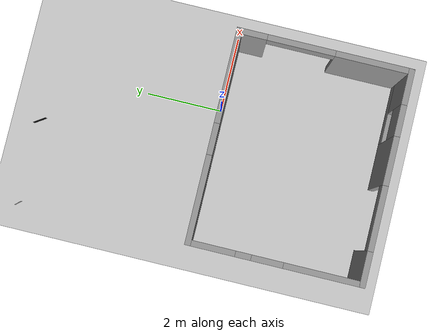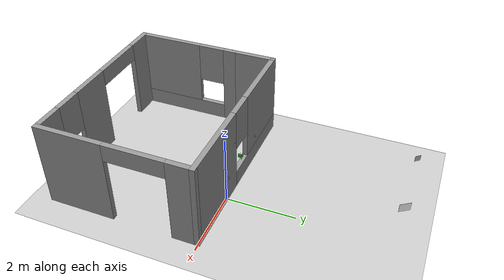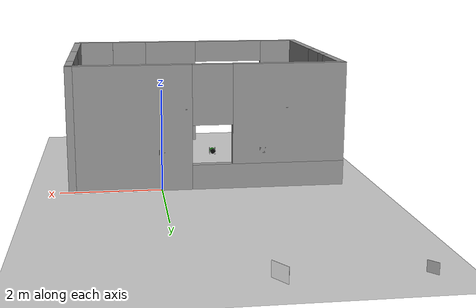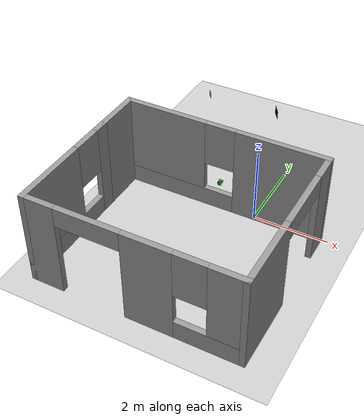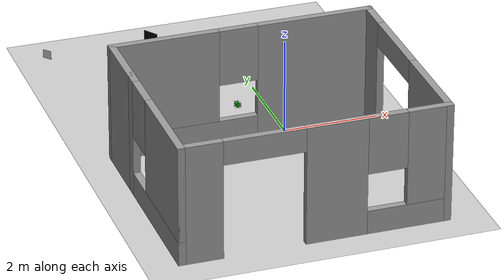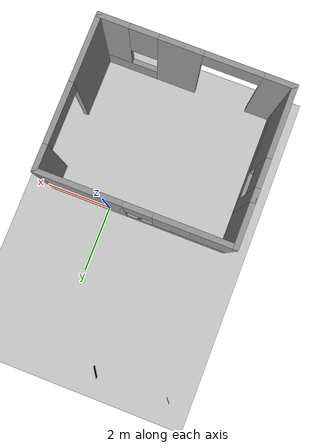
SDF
<sdf version="1.4">
 <world name="default">
  <include><uri>model://sun</uri></include>
  <include><uri>model://ground_plane</uri></include>
  <physics type="ode">
   <real_time_update_rate>1000.0</real_time_update_rate>
   <max_step_size>0.001</max_step_size>
   <real_time_factor>1</real_time_factor>
   <ode>
    <solver>
     <type>quick</type>
     <iters>150</iters>
     <precon_iters>0</precon_iters>
     <sor>1.400000</sor>
     <use_dynamic_moi_rescaling>1</use_dynamic_moi_rescaling>
    </solver>
    <constraints>
     <cfm>0.00001</cfm>
     <erp>0.2</erp>
     <contact_max_correcting_vel>2000.000000</contact_max_correcting_vel>
     <contact_surface_layer>0.01000</contact_surface_layer>
    </constraints>
   </ode>
  </physics>
  <model name="marker_1">
   <include><static>true</static><uri>model://aruco_marker_0</uri></include>
   <pose>-3.645012 4.636835 0.077714 0 0 -2.424063</pose>
  </model>
  <model name="marker_2">
   <include><static>true</static><uri>model://aruco_marker_2</uri></include>
   <pose>-1.375514 4.618280 0.077714 0 0 -0.975077</pose>
  </model>
  <model name="assembly_pump_blue_0">
   <include><static>false</static><uri>model://assembly_pump_blue_ariac</uri></include>
   <pose>0 0 0.77 0 0 1.57</pose>
  </model>
  <model name="assembly_pump_green_0">
   <include><static>false</static><uri>model://assembly_pump_green_ariac</uri></include>
   <pose>-1 0 0.77 0 0 1.57</pose>
  </model>
  <model name="assembly_pump_red_0">
   <include><static>false</static><uri>model://assembly_pump_red_ariac</uri></include>
   <pose>-2 0 0.77 0 0 1.57</pose>
  </model>
  <model name="logical_camera_1">
   <static>true</static>
   <pose>-0.5 0 1.6 3.14157 1.57 1.57</pose>
   <plugin name="ros_logical_camera" filename="libROSLogicalCameraPlugin.so">
    <robotNamespace>logical_camera</robotNamespace>
    <position_noise><noise><type>gaussian</type><mean>0.0</mean><stddev>0.001</stddev></noise></position_noise>
    <orientation_noise>
     <noise><type>gaussian</type><mean>0.0</mean><stddev>0.01</stddev></noise>
    </orientation_noise>
    <known_model_types>
     <type>assembly_pump_red</type>
     <type>assembly_pump_green</type>
     <type>assembly_pump_blue</type>
    </known_model_types>
    <anonymize_models>false</anonymize_models>
    <activation_topic>/ariac/sensor_enable</activation_topic>
   </plugin>
   <link name="link">
    <gravity>false</gravity>
    <inertial>
     <mass>0.1</mass>
     <inertia><ixx>0.000166667</ixx><iyy>0.000166667</iyy><izz>0.000166667</izz></inertia>
    </inertial>
    <visual name="visual">
     <pose>0 0.02 0 0 0 -1.5708</pose>
     <geometry><mesh><uri>model://logical_camera_ariac/meshes/camera.dae</uri></mesh></geometry>
    </visual>
    <sensor name="logical_camera" type="logical_camera">
     <logical_camera>
      <near>0.2</near>
      <far>1.1</far>
      <horizontal_fov>1.5</horizontal_fov>
      <aspect_ratio>1.2</aspect_ratio>
     </logical_camera>
     <visualize>True</visualize>
     <always_on>true</always_on>
     <update_rate>10</update_rate>
    </sensor>
   </link>
  </model>
  <model name="logical_camera_2">
   <static>true</static>
   <pose>-2.5 0 1.6 3.14157 1.57 1.57</pose>
   <plugin name="ros_logical_camera" filename="libROSLogicalCameraPlugin.so">
    <robotNamespace>logical_camera</robotNamespace>
    <position_noise><noise><type>gaussian</type><mean>0.0</mean><stddev>0.001</stddev></noise></position_noise>
    <orientation_noise>
     <noise><type>gaussian</type><mean>0.0</mean><stddev>0.01</stddev></noise>
    </orientation_noise>
    <known_model_types>
     <type>assembly_pump_red</type>
     <type>assembly_pump_green</type>
     <type>assembly_pump_blue</type>
    </known_model_types>
    <anonymize_models>false</anonymize_models>
    <activation_topic>/ariac/sensor_enable</activation_topic>
   </plugin>
   <link name="link">
    <gravity>false</gravity>
    <inertial>
     <mass>0.1</mass>
     <inertia><ixx>0.000166667</ixx><iyy>0.000166667</iyy><izz>0.000166667</izz></inertia>
    </inertial>
    <visual name="visual">
     <pose>0 0.02 0 0 0 -1.5708</pose>
     <geometry><mesh><uri>model://logical_camera_ariac/meshes/camera.dae</uri></mesh></geometry>
    </visual>
    <sensor name="logical_camera" type="logical_camera">
     <logical_camera>
      <near>0.2</near>
      <far>1.1</far>
      <horizontal_fov>1.5</horizontal_fov>
      <aspect_ratio>1.2</aspect_ratio>
     </logical_camera>
     <visualize>True</visualize>
     <always_on>true</always_on>
     <update_rate>10</update_rate>
    </sensor>
   </link>
  </model>
  <include><uri>model://house2</uri></include>
  <scene><ambient>0.4 0.4 0.4 1</ambient><background>0.7 0.7 0.7 1</background><shadows>true</shadows></scene>
 </world>
</sdf>

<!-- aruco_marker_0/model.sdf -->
<sdf version='1.6'>
  <model name='aruco_marker_0'>
    <link name='link_0'>
      <pose frame=''>0 0 0 0 -0 0</pose>
      <inertial>
        <mass>1</mass>
        <inertia>
          <ixx>0</ixx>
          <ixy>0</ixy>
          <ixz>0</ixz>
          <iyy>0</iyy>
          <iyz>0</iyz>
          <izz>0</izz>
        </inertia>
      </inertial>
      <visual name='visual'>
        <pose frame=''>0 0 0 0 -0 0</pose>
        <geometry>
          <mesh>
            <uri>file://isr-testbed/aruco_marker_0/aruco_marker_0.dae</uri>
            <scale>0.1 0.1 0.1</scale>
          </mesh>
        </geometry>
        <material>
          <lighting>1</lighting>
          <script>
            <uri>file://media/materials/scripts/gazebo.material</uri>
            <name>Gazebo/DepthMapVS</name>
          </script>
          <ambient>0.3 0.3 0.3 1</ambient>
          <diffuse>0.7 0.7 0.7 1</diffuse>
          <specular>0.01 0.01 0.01 1</specular>
          <emissive>0 0 0 1</emissive>
        </material>
        <transparency>0</transparency>
        <cast_shadows>1</cast_shadows>
      </visual>
      <collision name='collision'>
        <laser_retro>0</laser_retro>
        <max_contacts>10</max_contacts>
        <pose frame=''>0 0 0 0 -0 0</pose>
        <geometry>
          <mesh>
            <uri>file://isr-testbed/aruco_marker_0/aruco_marker_0.dae</uri>
            <scale>0.1 0.1 0.1</scale>
          </mesh>
        </geometry>
        <surface>
          <friction>
            <ode>
              <mu>1</mu>
              <mu2>1</mu2>
              <fdir1>0 0 0</fdir1>
              <slip1>0</slip1>
              <slip2>0</slip2>
            </ode>
            <torsional>
              <coefficient>1</coefficient>
              <patch_radius>0</patch_radius>
              <surface_radius>0</surface_radius>
              <use_patch_radius>1</use_patch_radius>
              <ode>
                <slip>0</slip>
              </ode>
            </torsional>
          </friction>
          <bounce>
            <restitution_coefficient>0</restitution_coefficient>
            <threshold>1e+06</threshold>
          </bounce>
          <contact>
            <collide_without_contact>0</collide_without_contact>
            <collide_without_contact_bitmask>1</collide_without_contact_bitmask>
            <collide_bitmask>1</collide_bitmask>
            <ode>
              <soft_cfm>0</soft_cfm>
              <soft_erp>0.2</soft_erp>
              <kp>1e+13</kp>
              <kd>1</kd>
              <max_vel>0.01</max_vel>
              <min_depth>0</min_depth>
            </ode>
            <bullet>
              <split_impulse>1</split_impulse>
              <split_impulse_penetration_threshold>-0.01</split_impulse_penetration_threshold>
              <soft_cfm>0</soft_cfm>
              <soft_erp>0.2</soft_erp>
              <kp>1e+13</kp>
              <kd>1</kd>
            </bullet>
          </contact>
        </surface>
      </collision>
    </link>
    <static>1</static>
    <allow_auto_disable>1</allow_auto_disable>
  </model>
</sdf>

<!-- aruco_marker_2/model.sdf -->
<sdf version="1.9">
  <model name="aruco_marker_2">
    <static>true</static>

    <link name="link">
      <visual name="front">
        <pose>0 0 0 0 0 0</pose>
        <geometry>
          <box>
            <size>0.35 0.002 0.35</size>
          </box>
        </geometry>

        <material>
          <ambient>1 1 1 1</ambient>
          <diffuse>1 1 1 1</diffuse>
          <specular>0.1 0.1 0.1 1</specular>
          <emissive>0 0 0 1</emissive>

          <pbr>
            <metal>
              <albedo_map>
                model://aruco/aruco_marker_2/materials/textures/marker_2.png
              </albedo_map>
              <emissive_map>
                model://aruco/aruco_marker_2/materials/textures/marker_2.png
              </emissive_map>
            </metal>
          </pbr>
        </material>
      </visual>

      <visual name="back">
        <pose>0 -0.002 0 0 0 3.1416</pose>
        <geometry>
          <box>
            <size>0.35 0.002 0.35</size>
          </box>
        </geometry>
        <material>
          <ambient>0 0 0 1</ambient>
          <diffuse>0 0 0 1</diffuse>
        </material>
      </visual>

    </link>

  </model>
</sdf>

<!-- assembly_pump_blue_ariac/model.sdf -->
<sdf version="1.6">
  <model name="assembly_pump_blue_ariac">
    <static>false</static>
    <link name="link">
      <inertial>
        <pose>0 0 0.005 0 0 0</pose>
        <mass>0.5</mass>
        <inertia>
          <ixx>0.001</ixx>
          <ixy>0</ixy>
          <ixz>0</ixz>
          <iyy>0.001</iyy>
          <iyz>0</iyz>
          <izz>0.001</izz>
        </inertia>
      </inertial>

      <collision name="collision">
        <geometry>
          <box>
            <size>0.11 0.11 0.11</size>
          </box>
        </geometry>
        <surface>
          <contact>
            <ode>
              <max_vel>0.1</max_vel>
              <min_depth>0.001</min_depth>
            </ode>
          </contact>
        </surface>
      </collision>
      <visual name="visual">
         <geometry>
           <mesh>
             <uri>model://assembly_pump_blue_ariac/meshes/assembly_pump_part_blue.dae</uri>
             <scale>0.9 0.9 0.9</scale>
           </mesh>
         </geometry>

       </visual>
    </link>
  </model>
</sdf>

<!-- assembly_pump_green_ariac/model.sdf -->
<sdf version="1.6">
  <model name="assembly_pump_green_ariac">
    <static>false</static>
    <link name="link">
      <inertial>
        <pose>0 0 0.005 0 0 0</pose>
        <mass>0.5</mass>
        <inertia>
          <ixx>0.001</ixx>
          <ixy>0</ixy>
          <ixz>0</ixz>
          <iyy>0.001</iyy>
          <iyz>0</iyz>
          <izz>0.001</izz>
        </inertia>
      </inertial>

      <collision name="collision">
        <geometry>
          <box>
            <size>0.11 0.11 0.11</size>
          </box>
        </geometry>
        <surface>
          <contact>
            <ode>
              <max_vel>0.1</max_vel>
              <min_depth>0.001</min_depth>
            </ode>
          </contact>
        </surface>
      </collision>
      <visual name="visual">
         <geometry>
           <mesh>
             <uri>model://assembly_pump_green_ariac/meshes/assembly_pump_part_green.dae</uri>
             <scale>0.9 0.9 0.9</scale>
           </mesh>
         </geometry>
       </visual>
    </link>
  </model>
</sdf>

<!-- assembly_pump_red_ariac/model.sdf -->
<sdf version="1.6">
  <model name="assembly_pump_red_ariac">
  <static>false</static>
    <link name="link">
      <inertial>
        <pose>0 0 0.005 0 0 0</pose>
        <mass>0.5</mass>
        <inertia>
          <ixx>0.001</ixx>
          <ixy>0</ixy>
          <ixz>0</ixz>
          <iyy>0.001</iyy>
          <iyz>0</iyz>
          <izz>0.001</izz>
        </inertia>
      </inertial>

      <collision name="collision">
        <geometry>
          <box>
            <size>0.11 0.11 0.11</size>
          </box>
        </geometry>
        <surface>
          <contact>
            <ode>
              <max_vel>0.1</max_vel>
              <min_depth>0.001</min_depth>
            </ode>
          </contact>
        </surface>
      </collision>
      <visual name="visual">
         <geometry>
           <mesh>
             <uri>model://assembly_pump_red_ariac/meshes/assembly_pump_part_red.dae</uri>
             <scale>0.9 0.9 0.9</scale>
           </mesh>
         </geometry>
       </visual>
    </link>
  </model>
</sdf>

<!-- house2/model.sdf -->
<sdf version='1.6'>
  <model name='house2'>
    <pose frame=''>-0.915 -2.195 0 0 -0 0</pose>
    <link name='Wall_0'>
      <pose frame=''>-2.675 -0.625 0 0 -0 -1.5708</pose>
      <visual name='Wall_0_Visual_0'>
        <pose frame=''>-1.42678 0 1.25 0 -0 0</pose>
        <geometry>
          <box>
            <size>0.396432 0.15 2.5</size>
          </box>
        </geometry>
        <material>
          <script>
            <uri>file://media/materials/scripts/gazebo.material</uri>
            <name>Gazebo/Grey</name>
          </script>
          <ambient>1 1 1 1</ambient>
        </material>
        <meta>
          <layer>0</layer>
        </meta>
      </visual>
      <collision name='Wall_0_Collision_0'>
        <geometry>
          <box>
            <size>0.396432 0.15 2.5</size>
          </box>
        </geometry>
        <pose frame=''>-1.42678 0 1.25 0 -0 0</pose>
      </collision>
      <visual name='Wall_0_Visual_1'>
        <pose frame=''>0.198216 0 0.25 0 -0 0</pose>
        <geometry>
          <box>
            <size>2.85357 0.15 0.5</size>
          </box>
        </geometry>
        <material>
          <script>
            <uri>file://media/materials/scripts/gazebo.material</uri>
            <name>Gazebo/Grey</name>
          </script>
          <ambient>1 1 1 1</ambient>
        </material>
        <meta>
          <layer>0</layer>
        </meta>
      </visual>
      <collision name='Wall_0_Collision_1'>
        <geometry>
          <box>
            <size>2.85357 0.15 0.5</size>
          </box>
        </geometry>
        <pose frame=''>0.198216 0 0.25 0 -0 0</pose>
      </collision>
      <visual name='Wall_0_Visual_2'>
        <pose frame=''>0.598216 0 1.5 0 -0 0</pose>
        <geometry>
          <box>
            <size>2.05357 0.15 2</size>
          </box>
        </geometry>
        <material>
          <script>
            <uri>file://media/materials/scripts/gazebo.material</uri>
            <name>Gazebo/Grey</name>
          </script>
          <ambient>1 1 1 1</ambient>
        </material>
        <meta>
          <layer>0</layer>
        </meta>
      </visual>
      <collision name='Wall_0_Collision_2'>
        <geometry>
          <box>
            <size>2.05357 0.15 2</size>
          </box>
        </geometry>
        <pose frame=''>0.598216 0 1.5 0 -0 0</pose>
      </collision>
      <visual name='Wall_0_Visual_3'>
        <pose frame=''>-0.828568 0 1.9 0 -0 0</pose>
        <geometry>
          <box>
            <size>0.8 0.15 1.2</size>
          </box>
        </geometry>
        <material>
          <script>
            <uri>file://media/materials/scripts/gazebo.material</uri>
            <name>Gazebo/Grey</name>
          </script>
          <ambient>1 1 1 1</ambient>
        </material>
        <meta>
          <layer>0</layer>
        </meta>
      </visual>
      <collision name='Wall_0_Collision_3'>
        <geometry>
          <box>
            <size>0.8 0.15 1.2</size>
          </box>
        </geometry>
        <pose frame=''>-0.828568 0 1.9 0 -0 0</pose>
      </collision>
    </link>
    <link name='Wall_1'>
      <pose frame=''>-0 -2.175 0 0 -0 0</pose>
      <visual name='Wall_1_Visual_0'>
        <pose frame=''>-2.30064 0 1.25 0 -0 0</pose>
        <geometry>
          <box>
            <size>0.898712 0.15 2.5</size>
          </box>
        </geometry>
        <material>
          <script>
            <uri>file://media/materials/scripts/gazebo.material</uri>
            <name>Gazebo/Grey</name>
          </script>
          <ambient>1 1 1 1</ambient>
        </material>
        <meta>
          <layer>0</layer>
        </meta>
      </visual>
      <collision name='Wall_1_Collision_0'>
        <geometry>
          <box>
            <size>0.898712 0.15 2.5</size>
          </box>
        </geometry>
        <pose frame=''>-2.30064 0 1.25 0 -0 0</pose>
      </collision>
      <visual name='Wall_1_Visual_1'>
        <pose frame=''>0.412575 0 1.25 0 -0 0</pose>
        <geometry>
          <box>
            <size>1.23812 0.15 2.5</size>
          </box>
        </geometry>
        <material>
          <script>
            <uri>file://media/materials/scripts/gazebo.material</uri>
            <name>Gazebo/Grey</name>
          </script>
          <ambient>1 1 1 1</ambient>
        </material>
        <meta>
          <layer>0</layer>
        </meta>
      </visual>
      <collision name='Wall_1_Collision_1'>
        <geometry>
          <box>
            <size>1.23812 0.15 2.5</size>
          </box>
        </geometry>
        <pose frame=''>0.412575 0 1.25 0 -0 0</pose>
      </collision>
      <visual name='Wall_1_Visual_2'>
        <pose frame=''>1.89082 0 0.25 0 -0 0</pose>
        <geometry>
          <box>
            <size>1.71837 0.15 0.5</size>
          </box>
        </geometry>
        <material>
          <script>
            <uri>file://media/materials/scripts/gazebo.material</uri>
            <name>Gazebo/Grey</name>
          </script>
          <ambient>1 1 1 1</ambient>
        </material>
        <meta>
          <layer>0</layer>
        </meta>
      </visual>
      <collision name='Wall_1_Collision_2'>
        <geometry>
          <box>
            <size>1.71837 0.15 0.5</size>
          </box>
        </geometry>
        <pose frame=''>1.89082 0 0.25 0 -0 0</pose>
      </collision>
      <visual name='Wall_1_Visual_3'>
        <pose frame=''>2.29082 0 1.5 0 -0 0</pose>
        <geometry>
          <box>
            <size>0.918367 0.15 2</size>
          </box>
        </geometry>
        <material>
          <script>
            <uri>file://media/materials/scripts/gazebo.material</uri>
            <name>Gazebo/Grey</name>
          </script>
          <ambient>1 1 1 1</ambient>
        </material>
        <meta>
          <layer>0</layer>
        </meta>
      </visual>
      <collision name='Wall_1_Collision_3'>
        <geometry>
          <box>
            <size>0.918367 0.15 2</size>
          </box>
        </geometry>
        <pose frame=''>2.29082 0 1.5 0 -0 0</pose>
      </collision>
      <visual name='Wall_1_Visual_4'>
        <pose frame=''>1.43163 0 1.9 0 -0 0</pose>
        <geometry>
          <box>
            <size>0.8 0.15 1.2</size>
          </box>
        </geometry>
        <material>
          <script>
            <uri>file://media/materials/scripts/gazebo.material</uri>
            <name>Gazebo/Grey</name>
          </script>
          <ambient>1 1 1 1</ambient>
        </material>
        <meta>
          <layer>0</layer>
        </meta>
      </visual>
      <collision name='Wall_1_Collision_4'>
        <geometry>
          <box>
            <size>0.8 0.15 1.2</size>
          </box>
        </geometry>
        <pose frame=''>1.43163 0 1.9 0 -0 0</pose>
      </collision>
      <visual name='Wall_1_Visual_5'>
        <pose frame=''>-1.02889 0 2.25 0 -0 0</pose>
        <geometry>
          <box>
            <size>1.64481 0.15 0.5</size>
          </box>
        </geometry>
        <material>
          <script>
            <uri>file://media/materials/scripts/gazebo.material</uri>
            <name>Gazebo/Grey</name>
          </script>
          <ambient>1 1 1 1</ambient>
        </material>
        <meta>
          <layer>0</layer>
        </meta>
      </visual>
      <collision name='Wall_1_Collision_5'>
        <geometry>
          <box>
            <size>1.64481 0.15 0.5</size>
          </box>
        </geometry>
        <pose frame=''>-1.02889 0 2.25 0 -0 0</pose>
      </collision>
    </link>
    <link name='Wall_2'>
      <pose frame=''>2.675 0 0 0 -0 1.5708</pose>
      <visual name='Wall_2_Visual_0'>
        <pose frame=''>-1.25487 0 1.25 0 -0 0</pose>
        <geometry>
          <box>
            <size>1.99027 0.15 2.5</size>
          </box>
        </geometry>
        <material>
          <script>
            <uri>file://media/materials/scripts/gazebo.material</uri>
            <name>Gazebo/Grey</name>
          </script>
          <ambient>1 1 1 1</ambient>
        </material>
        <meta>
          <layer>0</layer>
        </meta>
      </visual>
      <collision name='Wall_2_Collision_0'>
        <geometry>
          <box>
            <size>1.99027 0.15 2.5</size>
          </box>
        </geometry>
        <pose frame=''>-1.25487 0 1.25 0 -0 0</pose>
      </collision>
      <visual name='Wall_2_Visual_1'>
        <pose frame=''>1.85744 0 1.25 0 -0 0</pose>
        <geometry>
          <box>
            <size>0.785126 0.15 2.5</size>
          </box>
        </geometry>
        <material>
          <script>
            <uri>file://media/materials/scripts/gazebo.material</uri>
            <name>Gazebo/Grey</name>
          </script>
          <ambient>1 1 1 1</ambient>
        </material>
        <meta>
          <layer>0</layer>
        </meta>
      </visual>
      <collision name='Wall_2_Collision_1'>
        <geometry>
          <box>
            <size>0.785126 0.15 2.5</size>
          </box>
        </geometry>
        <pose frame=''>1.85744 0 1.25 0 -0 0</pose>
      </collision>
      <visual name='Wall_2_Visual_2'>
        <pose frame=''>0.602571 0 2.25 0 -0 0</pose>
        <geometry>
          <box>
            <size>1.72461 0.15 0.5</size>
          </box>
        </geometry>
        <material>
          <script>
            <uri>file://media/materials/scripts/gazebo.material</uri>
            <name>Gazebo/Grey</name>
          </script>
          <ambient>1 1 1 1</ambient>
        </material>
        <meta>
          <layer>0</layer>
        </meta>
      </visual>
      <collision name='Wall_2_Collision_2'>
        <geometry>
          <box>
            <size>1.72461 0.15 0.5</size>
          </box>
        </geometry>
        <pose frame=''>0.602571 0 2.25 0 -0 0</pose>
      </collision>
    </link>
    <link name='Wall_3'>
      <pose frame=''>-0 2.175 0 0 -0 3.14159</pose>
      <visual name='Wall_3_Visual_0'>
        <pose frame=''>-1.53271 0 1.25 0 -0 0</pose>
        <geometry>
          <box>
            <size>2.43458 0.15 2.5</size>
          </box>
        </geometry>
        <material>
          <script>
            <uri>file://media/materials/scripts/gazebo.material</uri>
            <name>Gazebo/Grey</name>
          </script>
          <ambient>1 1 1 1</ambient>
        </material>
        <meta>
          <layer>0</layer>
        </meta>
      </visual>
      <collision name='Wall_3_Collision_0'>
        <geometry>
          <box>
            <size>2.43458 0.15 2.5</size>
          </box>
        </geometry>
        <pose frame=''>-1.53271 0 1.25 0 -0 0</pose>
      </collision>
      <visual name='Wall_3_Visual_1'>
        <pose frame=''>1.21729 0 0.25 0 -0 0</pose>
        <geometry>
          <box>
            <size>3.06542 0.15 0.5</size>
          </box>
        </geometry>
        <material>
          <script>
            <uri>file://media/materials/scripts/gazebo.material</uri>
            <name>Gazebo/Grey</name>
          </script>
          <ambient>1 1 1 1</ambient>
        </material>
        <meta>
          <layer>0</layer>
        </meta>
      </visual>
      <collision name='Wall_3_Collision_1'>
        <geometry>
          <box>
            <size>3.06542 0.15 0.5</size>
          </box>
        </geometry>
        <pose frame=''>1.21729 0 0.25 0 -0 0</pose>
      </collision>
      <visual name='Wall_3_Visual_2'>
        <pose frame=''>1.61729 0 1.5 0 -0 0</pose>
        <geometry>
          <box>
            <size>2.26542 0.15 2</size>
          </box>
        </geometry>
        <material>
          <script>
            <uri>file://media/materials/scripts/gazebo.material</uri>
            <name>Gazebo/Grey</name>
          </script>
          <ambient>1 1 1 1</ambient>
        </material>
        <meta>
          <layer>0</layer>
        </meta>
      </visual>
      <collision name='Wall_3_Collision_2'>
        <geometry>
          <box>
            <size>2.26542 0.15 2</size>
          </box>
        </geometry>
        <pose frame=''>1.61729 0 1.5 0 -0 0</pose>
      </collision>
      <visual name='Wall_3_Visual_3'>
        <pose frame=''>0.084579 0 1.9 0 -0 0</pose>
        <geometry>
          <box>
            <size>0.8 0.15 1.2</size>
          </box>
        </geometry>
        <material>
          <script>
            <uri>file://media/materials/scripts/gazebo.material</uri>
            <name>Gazebo/Grey</name>
          </script>
          <ambient>1 1 1 1</ambient>
        </material>
        <meta>
          <layer>0</layer>
        </meta>
      </visual>
      <collision name='Wall_3_Collision_3'>
        <geometry>
          <box>
            <size>0.8 0.15 1.2</size>
          </box>
        </geometry>
        <pose frame=''>0.084579 0 1.9 0 -0 0</pose>
      </collision>
    </link>
    <link name='Wall_4'>
      <collision name='Wall_4_Collision'>
        <geometry>
          <box>
            <size>1.4 0.15 2.5</size>
          </box>
        </geometry>
        <pose frame=''>0 0 1.25 0 -0 0</pose>
      </collision>
      <visual name='Wall_4_Visual'>
        <pose frame=''>0 0 1.25 0 -0 0</pose>
        <geometry>
          <box>
            <size>1.4 0.15 2.5</size>
          </box>
        </geometry>
        <material>
          <script>
            <uri>file://media/materials/scripts/gazebo.material</uri>
            <name>Gazebo/Grey</name>
          </script>
          <ambient>1 1 1 1</ambient>
        </material>
        <meta>
          <layer>0</layer>
        </meta>
      </visual>
      <pose frame=''>-2.675 1.55 0 0 -0 -1.5708</pose>
    </link>
    <static>1</static>
  </model>
</sdf>
